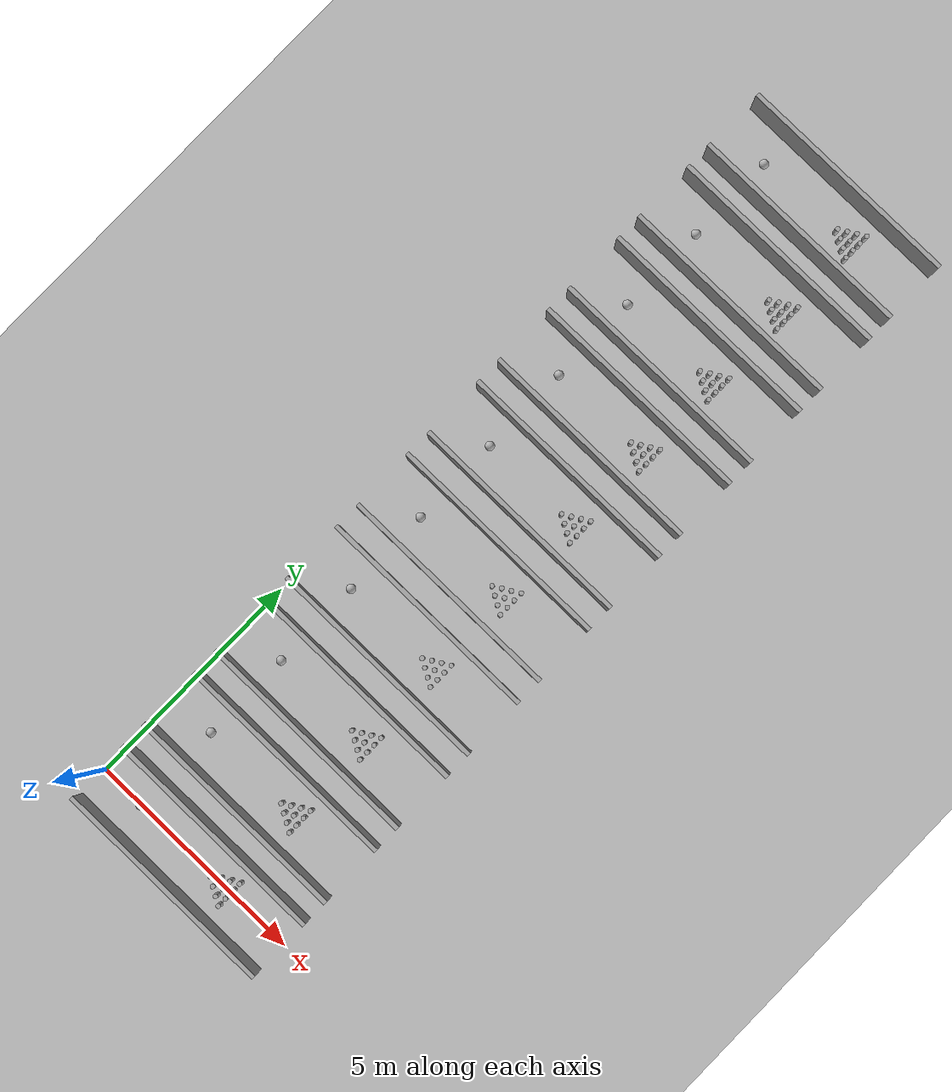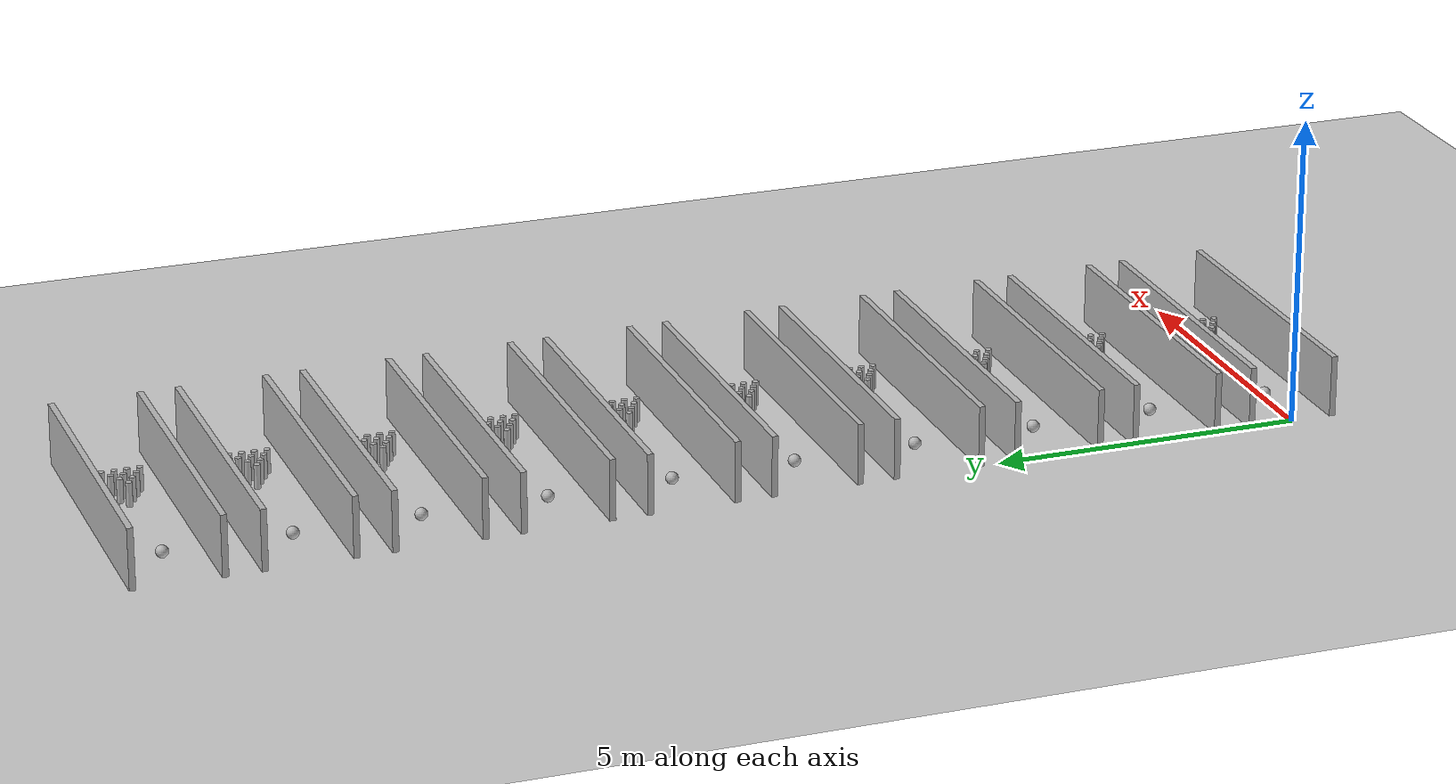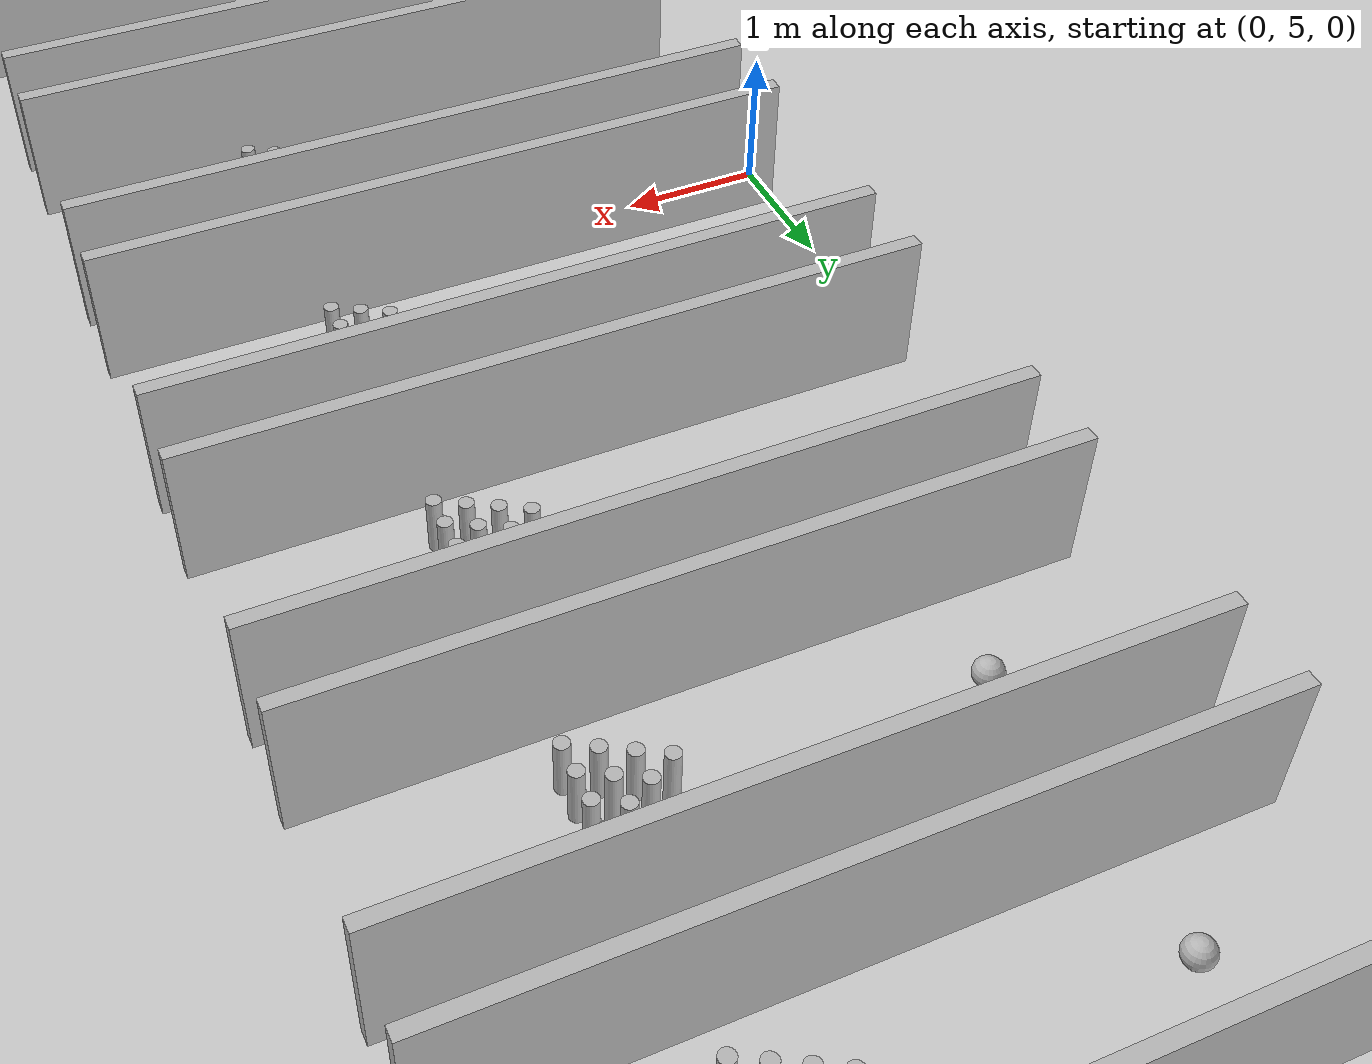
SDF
<sdf version="1.4">
  <world name="default">

    <scene>
      <ambient>0.4 0.4 0.4 1</ambient>
      <background>0.7 0.7 0.7 1</background>
      <shadows>true</shadows>
    </scene>

    <!-- A global light source -->
    <include>
      <uri>model://sun</uri>
    </include>

    <!-- A ground plane -->
    <include>
      <uri>model://ground_plane</uri>
    </include>

    <!-- Bowling ball -->
    <include>
      <pose> 1 0 0 0 0 0 </pose>
      <uri>model://bowling_ball</uri>
      <name>lane_0_ball</name>
    </include>

    <!-- Wall -->
    <include>
      <pose> 0 0.7 0 0 0 0 </pose>
      <uri>model://alley_wall</uri>
      <name>lane_0_right_wall</name>
    </include>

    <include>
      <pose> 0 -0.7 0 0 0 0 </pose>
      <uri>model://alley_wall</uri>
      <name>lane_0_left_wall</name>
    </include>

    <!-- Bowling pins -->
    <!-- First row -->
    <include>
      <pose> 3 0 0 0 0 0 </pose>
      <uri>model://bowling_pin</uri>
      <name>lane_0_pin1</name>
    </include>

    <!-- Second row -->
    <include>
      <pose> 3.1732 -0.1 0 0 0 0 </pose>
      <uri>model://bowling_pin</uri>
      <name>lane_0_pin2</name>
    </include>

    <include>
      <pose> 3.1732 0.1 0 0 0 0 </pose>
      <uri>model://bowling_pin</uri>
      <name>lane_0_pin3</name>
    </include>

    <!-- Third row -->
    <include>
      <pose> 3.346 -0.2 0 0 0 0 </pose>
      <uri>model://bowling_pin</uri>
      <name>lane_0_pin4</name>
    </include>

    <include>
      <pose> 3.346 0 0 0 0 0 </pose>
      <uri>model://bowling_pin</uri>
      <name>lane_0_pin5</name>
    </include>

    <include>
      <pose>3.346 0.2 0 0 0 0 </pose>
      <uri>model://bowling_pin</uri>
      <name>lane_0_pin6</name>
    </include>

    <!-- Fourth row -->
    <include>
      <pose>3.520 -0.3 0 0 0 0 </pose>
      <uri>model://bowling_pin</uri>
      <name>lane_0_pin7</name>
    </include>

    <include>
      <pose>3.520 -0.1 0 0 0 0 </pose>
      <uri>model://bowling_pin</uri>
      <name>lane_0_pin8</name>
    </include>

    <include>
      <pose>3.520 0.1 0 0 0 0 </pose>
      <uri>model://bowling_pin</uri>
      <name>lane_0_pin9</name>
    </include>

    <include>
      <pose>3.520 0.3 0 0 0 0 </pose>
      <uri>model://bowling_pin</uri>
      <name>lane_0_pin10</name>
    </include>
    <!-- Bowling ball -->
    <include>
      <pose> 1 2 0 0 0 0 </pose>
      <uri>model://bowling_ball</uri>
      <name>lane_1_ball</name>
    </include>

    <!-- Wall -->
    <include>
      <pose> 0 2.7 0 0 0 0 </pose>
      <uri>model://alley_wall</uri>
      <name>lane_1_right_wall</name>
    </include>

    <include>
      <pose> 0 1.3 0 0 0 0 </pose>
      <uri>model://alley_wall</uri>
      <name>lane_1_left_wall</name>
    </include>

    <!-- Bowling pins -->
    <!-- First row -->
    <include>
      <pose> 3 2 0 0 0 0 </pose>
      <uri>model://bowling_pin</uri>
      <name>lane_1_pin1</name>
    </include>

    <!-- Second row -->
    <include>
      <pose> 3.1732 1.9 0 0 0 0 </pose>
      <uri>model://bowling_pin</uri>
      <name>lane_1_pin2</name>
    </include>

    <include>
      <pose> 3.1732 2.1 0 0 0 0 </pose>
      <uri>model://bowling_pin</uri>
      <name>lane_1_pin3</name>
    </include>

    <!-- Third row -->
    <include>
      <pose> 3.346 1.8 0 0 0 0 </pose>
      <uri>model://bowling_pin</uri>
      <name>lane_1_pin4</name>
    </include>

    <include>
      <pose> 3.346 2 0 0 0 0 </pose>
      <uri>model://bowling_pin</uri>
      <name>lane_1_pin5</name>
    </include>

    <include>
      <pose>3.346 2.2 0 0 0 0 </pose>
      <uri>model://bowling_pin</uri>
      <name>lane_1_pin6</name>
    </include>

    <!-- Fourth row -->
    <include>
      <pose>3.520 1.7 0 0 0 0 </pose>
      <uri>model://bowling_pin</uri>
      <name>lane_1_pin7</name>
    </include>

    <include>
      <pose>3.520 1.9 0 0 0 0 </pose>
      <uri>model://bowling_pin</uri>
      <name>lane_1_pin8</name>
    </include>

    <include>
      <pose>3.520 2.1 0 0 0 0 </pose>
      <uri>model://bowling_pin</uri>
      <name>lane_1_pin9</name>
    </include>

    <include>
      <pose>3.520 2.3 0 0 0 0 </pose>
      <uri>model://bowling_pin</uri>
      <name>lane_1_pin10</name>
    </include>
    <!-- Bowling ball -->
    <include>
      <pose> 1 4 0 0 0 0 </pose>
      <uri>model://bowling_ball</uri>
      <name>lane_2_ball</name>
    </include>

    <!-- Wall -->
    <include>
      <pose> 0 4.7 0 0 0 0 </pose>
      <uri>model://alley_wall</uri>
      <name>lane_2_right_wall</name>
    </include>

    <include>
      <pose> 0 3.3 0 0 0 0 </pose>
      <uri>model://alley_wall</uri>
      <name>lane_2_left_wall</name>
    </include>

    <!-- Bowling pins -->
    <!-- First row -->
    <include>
      <pose> 3 4 0 0 0 0 </pose>
      <uri>model://bowling_pin</uri>
      <name>lane_2_pin1</name>
    </include>

    <!-- Second row -->
    <include>
      <pose> 3.1732 3.9 0 0 0 0 </pose>
      <uri>model://bowling_pin</uri>
      <name>lane_2_pin2</name>
    </include>

    <include>
      <pose> 3.1732 4.1 0 0 0 0 </pose>
      <uri>model://bowling_pin</uri>
      <name>lane_2_pin3</name>
    </include>

    <!-- Third row -->
    <include>
      <pose> 3.346 3.8 0 0 0 0 </pose>
      <uri>model://bowling_pin</uri>
      <name>lane_2_pin4</name>
    </include>

    <include>
      <pose> 3.346 4 0 0 0 0 </pose>
      <uri>model://bowling_pin</uri>
      <name>lane_2_pin5</name>
    </include>

    <include>
      <pose>3.346 4.2 0 0 0 0 </pose>
      <uri>model://bowling_pin</uri>
      <name>lane_2_pin6</name>
    </include>

    <!-- Fourth row -->
    <include>
      <pose>3.520 3.7 0 0 0 0 </pose>
      <uri>model://bowling_pin</uri>
      <name>lane_2_pin7</name>
    </include>

    <include>
      <pose>3.520 3.9 0 0 0 0 </pose>
      <uri>model://bowling_pin</uri>
      <name>lane_2_pin8</name>
    </include>

    <include>
      <pose>3.520 4.1 0 0 0 0 </pose>
      <uri>model://bowling_pin</uri>
      <name>lane_2_pin9</name>
    </include>

    <include>
      <pose>3.520 4.3 0 0 0 0 </pose>
      <uri>model://bowling_pin</uri>
      <name>lane_2_pin10</name>
    </include>
    <!-- Bowling ball -->
    <include>
      <pose> 1 6 0 0 0 0 </pose>
      <uri>model://bowling_ball</uri>
      <name>lane_3_ball</name>
    </include>

    <!-- Wall -->
    <include>
      <pose> 0 6.7 0 0 0 0 </pose>
      <uri>model://alley_wall</uri>
      <name>lane_3_right_wall</name>
    </include>

    <include>
      <pose> 0 5.3 0 0 0 0 </pose>
      <uri>model://alley_wall</uri>
      <name>lane_3_left_wall</name>
    </include>

    <!-- Bowling pins -->
    <!-- First row -->
    <include>
      <pose> 3 6 0 0 0 0 </pose>
      <uri>model://bowling_pin</uri>
      <name>lane_3_pin1</name>
    </include>

    <!-- Second row -->
    <include>
      <pose> 3.1732 5.9 0 0 0 0 </pose>
      <uri>model://bowling_pin</uri>
      <name>lane_3_pin2</name>
    </include>

    <include>
      <pose> 3.1732 6.1 0 0 0 0 </pose>
      <uri>model://bowling_pin</uri>
      <name>lane_3_pin3</name>
    </include>

    <!-- Third row -->
    <include>
      <pose> 3.346 5.8 0 0 0 0 </pose>
      <uri>model://bowling_pin</uri>
      <name>lane_3_pin4</name>
    </include>

    <include>
      <pose> 3.346 6 0 0 0 0 </pose>
      <uri>model://bowling_pin</uri>
      <name>lane_3_pin5</name>
    </include>

    <include>
      <pose>3.346 6.2 0 0 0 0 </pose>
      <uri>model://bowling_pin</uri>
      <name>lane_3_pin6</name>
    </include>

    <!-- Fourth row -->
    <include>
      <pose>3.520 5.7 0 0 0 0 </pose>
      <uri>model://bowling_pin</uri>
      <name>lane_3_pin7</name>
    </include>

    <include>
      <pose>3.520 5.9 0 0 0 0 </pose>
      <uri>model://bowling_pin</uri>
      <name>lane_3_pin8</name>
    </include>

    <include>
      <pose>3.520 6.1 0 0 0 0 </pose>
      <uri>model://bowling_pin</uri>
      <name>lane_3_pin9</name>
    </include>

    <include>
      <pose>3.520 6.3 0 0 0 0 </pose>
      <uri>model://bowling_pin</uri>
      <name>lane_3_pin10</name>
    </include>
    <!-- Bowling ball -->
    <include>
      <pose> 1 8 0 0 0 0 </pose>
      <uri>model://bowling_ball</uri>
      <name>lane_4_ball</name>
    </include>

    <!-- Wall -->
    <include>
      <pose> 0 8.7 0 0 0 0 </pose>
      <uri>model://alley_wall</uri>
      <name>lane_4_right_wall</name>
    </include>

    <include>
      <pose> 0 7.3 0 0 0 0 </pose>
      <uri>model://alley_wall</uri>
      <name>lane_4_left_wall</name>
    </include>

    <!-- Bowling pins -->
    <!-- First row -->
    <include>
      <pose> 3 8 0 0 0 0 </pose>
      <uri>model://bowling_pin</uri>
      <name>lane_4_pin1</name>
    </include>

    <!-- Second row -->
    <include>
      <pose> 3.1732 7.9 0 0 0 0 </pose>
      <uri>model://bowling_pin</uri>
      <name>lane_4_pin2</name>
    </include>

    <include>
      <pose> 3.1732 8.1 0 0 0 0 </pose>
      <uri>model://bowling_pin</uri>
      <name>lane_4_pin3</name>
    </include>

    <!-- Third row -->
    <include>
      <pose> 3.346 7.8 0 0 0 0 </pose>
      <uri>model://bowling_pin</uri>
      <name>lane_4_pin4</name>
    </include>

    <include>
      <pose> 3.346 8 0 0 0 0 </pose>
      <uri>model://bowling_pin</uri>
      <name>lane_4_pin5</name>
    </include>

    <include>
      <pose>3.346 8.2 0 0 0 0 </pose>
      <uri>model://bowling_pin</uri>
      <name>lane_4_pin6</name>
    </include>

    <!-- Fourth row -->
    <include>
      <pose>3.520 7.7 0 0 0 0 </pose>
      <uri>model://bowling_pin</uri>
      <name>lane_4_pin7</name>
    </include>

    <include>
      <pose>3.520 7.9 0 0 0 0 </pose>
      <uri>model://bowling_pin</uri>
      <name>lane_4_pin8</name>
    </include>

    <include>
      <pose>3.520 8.1 0 0 0 0 </pose>
      <uri>model://bowling_pin</uri>
      <name>lane_4_pin9</name>
    </include>

    <include>
      <pose>3.520 8.3 0 0 0 0 </pose>
      <uri>model://bowling_pin</uri>
      <name>lane_4_pin10</name>
    </include>
    <!-- Bowling ball -->
    <include>
      <pose> 1 10 0 0 0 0 </pose>
      <uri>model://bowling_ball</uri>
      <name>lane_5_ball</name>
    </include>

    <!-- Wall -->
    <include>
      <pose> 0 10.7 0 0 0 0 </pose>
      <uri>model://alley_wall</uri>
      <name>lane_5_right_wall</name>
    </include>

    <include>
      <pose> 0 9.3 0 0 0 0 </pose>
      <uri>model://alley_wall</uri>
      <name>lane_5_left_wall</name>
    </include>

    <!-- Bowling pins -->
    <!-- First row -->
    <include>
      <pose> 3 10 0 0 0 0 </pose>
      <uri>model://bowling_pin</uri>
      <name>lane_5_pin1</name>
    </include>

    <!-- Second row -->
    <include>
      <pose> 3.1732 9.9 0 0 0 0 </pose>
      <uri>model://bowling_pin</uri>
      <name>lane_5_pin2</name>
    </include>

    <include>
      <pose> 3.1732 10.1 0 0 0 0 </pose>
      <uri>model://bowling_pin</uri>
      <name>lane_5_pin3</name>
    </include>

    <!-- Third row -->
    <include>
      <pose> 3.346 9.8 0 0 0 0 </pose>
      <uri>model://bowling_pin</uri>
      <name>lane_5_pin4</name>
    </include>

    <include>
      <pose> 3.346 10 0 0 0 0 </pose>
      <uri>model://bowling_pin</uri>
      <name>lane_5_pin5</name>
    </include>

    <include>
      <pose>3.346 10.2 0 0 0 0 </pose>
      <uri>model://bowling_pin</uri>
      <name>lane_5_pin6</name>
    </include>

    <!-- Fourth row -->
    <include>
      <pose>3.520 9.7 0 0 0 0 </pose>
      <uri>model://bowling_pin</uri>
      <name>lane_5_pin7</name>
    </include>

    <include>
      <pose>3.520 9.9 0 0 0 0 </pose>
      <uri>model://bowling_pin</uri>
      <name>lane_5_pin8</name>
    </include>

    <include>
      <pose>3.520 10.1 0 0 0 0 </pose>
      <uri>model://bowling_pin</uri>
      <name>lane_5_pin9</name>
    </include>

    <include>
      <pose>3.520 10.3 0 0 0 0 </pose>
      <uri>model://bowling_pin</uri>
      <name>lane_5_pin10</name>
    </include>
    <!-- Bowling ball -->
    <include>
      <pose> 1 12 0 0 0 0 </pose>
      <uri>model://bowling_ball</uri>
      <name>lane_6_ball</name>
    </include>

    <!-- Wall -->
    <include>
      <pose> 0 12.7 0 0 0 0 </pose>
      <uri>model://alley_wall</uri>
      <name>lane_6_right_wall</name>
    </include>

    <include>
      <pose> 0 11.3 0 0 0 0 </pose>
      <uri>model://alley_wall</uri>
      <name>lane_6_left_wall</name>
    </include>

    <!-- Bowling pins -->
    <!-- First row -->
    <include>
      <pose> 3 12 0 0 0 0 </pose>
      <uri>model://bowling_pin</uri>
      <name>lane_6_pin1</name>
    </include>

    <!-- Second row -->
    <include>
      <pose> 3.1732 11.9 0 0 0 0 </pose>
      <uri>model://bowling_pin</uri>
      <name>lane_6_pin2</name>
    </include>

    <include>
      <pose> 3.1732 12.1 0 0 0 0 </pose>
      <uri>model://bowling_pin</uri>
      <name>lane_6_pin3</name>
    </include>

    <!-- Third row -->
    <include>
      <pose> 3.346 11.8 0 0 0 0 </pose>
      <uri>model://bowling_pin</uri>
      <name>lane_6_pin4</name>
    </include>

    <include>
      <pose> 3.346 12 0 0 0 0 </pose>
      <uri>model://bowling_pin</uri>
      <name>lane_6_pin5</name>
    </include>

    <include>
      <pose>3.346 12.2 0 0 0 0 </pose>
      <uri>model://bowling_pin</uri>
      <name>lane_6_pin6</name>
    </include>

    <!-- Fourth row -->
    <include>
      <pose>3.520 11.7 0 0 0 0 </pose>
      <uri>model://bowling_pin</uri>
      <name>lane_6_pin7</name>
    </include>

    <include>
      <pose>3.520 11.9 0 0 0 0 </pose>
      <uri>model://bowling_pin</uri>
      <name>lane_6_pin8</name>
    </include>

    <include>
      <pose>3.520 12.1 0 0 0 0 </pose>
      <uri>model://bowling_pin</uri>
      <name>lane_6_pin9</name>
    </include>

    <include>
      <pose>3.520 12.3 0 0 0 0 </pose>
      <uri>model://bowling_pin</uri>
      <name>lane_6_pin10</name>
    </include>
    <!-- Bowling ball -->
    <include>
      <pose> 1 14 0 0 0 0 </pose>
      <uri>model://bowling_ball</uri>
      <name>lane_7_ball</name>
    </include>

    <!-- Wall -->
    <include>
      <pose> 0 14.7 0 0 0 0 </pose>
      <uri>model://alley_wall</uri>
      <name>lane_7_right_wall</name>
    </include>

    <include>
      <pose> 0 13.3 0 0 0 0 </pose>
      <uri>model://alley_wall</uri>
      <name>lane_7_left_wall</name>
    </include>

    <!-- Bowling pins -->
    <!-- First row -->
    <include>
      <pose> 3 14 0 0 0 0 </pose>
      <uri>model://bowling_pin</uri>
      <name>lane_7_pin1</name>
    </include>

    <!-- Second row -->
    <include>
      <pose> 3.1732 13.9 0 0 0 0 </pose>
      <uri>model://bowling_pin</uri>
      <name>lane_7_pin2</name>
    </include>

    <include>
      <pose> 3.1732 14.1 0 0 0 0 </pose>
      <uri>model://bowling_pin</uri>
      <name>lane_7_pin3</name>
    </include>

    <!-- Third row -->
    <include>
      <pose> 3.346 13.8 0 0 0 0 </pose>
      <uri>model://bowling_pin</uri>
      <name>lane_7_pin4</name>
    </include>

    <include>
      <pose> 3.346 14 0 0 0 0 </pose>
      <uri>model://bowling_pin</uri>
      <name>lane_7_pin5</name>
    </include>

    <include>
      <pose>3.346 14.2 0 0 0 0 </pose>
      <uri>model://bowling_pin</uri>
      <name>lane_7_pin6</name>
    </include>

    <!-- Fourth row -->
    <include>
      <pose>3.520 13.7 0 0 0 0 </pose>
      <uri>model://bowling_pin</uri>
      <name>lane_7_pin7</name>
    </include>

    <include>
      <pose>3.520 13.9 0 0 0 0 </pose>
      <uri>model://bowling_pin</uri>
      <name>lane_7_pin8</name>
    </include>

    <include>
      <pose>3.520 14.1 0 0 0 0 </pose>
      <uri>model://bowling_pin</uri>
      <name>lane_7_pin9</name>
    </include>

    <include>
      <pose>3.520 14.3 0 0 0 0 </pose>
      <uri>model://bowling_pin</uri>
      <name>lane_7_pin10</name>
    </include>
    <!-- Bowling ball -->
    <include>
      <pose> 1 16 0 0 0 0 </pose>
      <uri>model://bowling_ball</uri>
      <name>lane_8_ball</name>
    </include>

    <!-- Wall -->
    <include>
      <pose> 0 16.7 0 0 0 0 </pose>
      <uri>model://alley_wall</uri>
      <name>lane_8_right_wall</name>
    </include>

    <include>
      <pose> 0 15.3 0 0 0 0 </pose>
      <uri>model://alley_wall</uri>
      <name>lane_8_left_wall</name>
    </include>

    <!-- Bowling pins -->
    <!-- First row -->
    <include>
      <pose> 3 16 0 0 0 0 </pose>
      <uri>model://bowling_pin</uri>
      <name>lane_8_pin1</name>
    </include>

    <!-- Second row -->
    <include>
      <pose> 3.1732 15.9 0 0 0 0 </pose>
      <uri>model://bowling_pin</uri>
      <name>lane_8_pin2</name>
    </include>

    <include>
      <pose> 3.1732 16.1 0 0 0 0 </pose>
      <uri>model://bowling_pin</uri>
      <name>lane_8_pin3</name>
    </include>

    <!-- Third row -->
    <include>
      <pose> 3.346 15.8 0 0 0 0 </pose>
      <uri>model://bowling_pin</uri>
      <name>lane_8_pin4</name>
    </include>

    <include>
      <pose> 3.346 16 0 0 0 0 </pose>
      <uri>model://bowling_pin</uri>
      <name>lane_8_pin5</name>
    </include>

    <include>
      <pose>3.346 16.2 0 0 0 0 </pose>
      <uri>model://bowling_pin</uri>
      <name>lane_8_pin6</name>
    </include>

    <!-- Fourth row -->
    <include>
      <pose>3.520 15.7 0 0 0 0 </pose>
      <uri>model://bowling_pin</uri>
      <name>lane_8_pin7</name>
    </include>

    <include>
      <pose>3.520 15.9 0 0 0 0 </pose>
      <uri>model://bowling_pin</uri>
      <name>lane_8_pin8</name>
    </include>

    <include>
      <pose>3.520 16.1 0 0 0 0 </pose>
      <uri>model://bowling_pin</uri>
      <name>lane_8_pin9</name>
    </include>

    <include>
      <pose>3.520 16.3 0 0 0 0 </pose>
      <uri>model://bowling_pin</uri>
      <name>lane_8_pin10</name>
    </include>
    <!-- Bowling ball -->
    <include>
      <pose> 1 18 0 0 0 0 </pose>
      <uri>model://bowling_ball</uri>
      <name>lane_9_ball</name>
    </include>

    <!-- Wall -->
    <include>
      <pose> 0 18.7 0 0 0 0 </pose>
      <uri>model://alley_wall</uri>
      <name>lane_9_right_wall</name>
    </include>

    <include>
      <pose> 0 17.3 0 0 0 0 </pose>
      <uri>model://alley_wall</uri>
      <name>lane_9_left_wall</name>
    </include>

    <!-- Bowling pins -->
    <!-- First row -->
    <include>
      <pose> 3 18 0 0 0 0 </pose>
      <uri>model://bowling_pin</uri>
      <name>lane_9_pin1</name>
    </include>

    <!-- Second row -->
    <include>
      <pose> 3.1732 17.9 0 0 0 0 </pose>
      <uri>model://bowling_pin</uri>
      <name>lane_9_pin2</name>
    </include>

    <include>
      <pose> 3.1732 18.1 0 0 0 0 </pose>
      <uri>model://bowling_pin</uri>
      <name>lane_9_pin3</name>
    </include>

    <!-- Third row -->
    <include>
      <pose> 3.346 17.8 0 0 0 0 </pose>
      <uri>model://bowling_pin</uri>
      <name>lane_9_pin4</name>
    </include>

    <include>
      <pose> 3.346 18 0 0 0 0 </pose>
      <uri>model://bowling_pin</uri>
      <name>lane_9_pin5</name>
    </include>

    <include>
      <pose>3.346 18.2 0 0 0 0 </pose>
      <uri>model://bowling_pin</uri>
      <name>lane_9_pin6</name>
    </include>

    <!-- Fourth row -->
    <include>
      <pose>3.520 17.7 0 0 0 0 </pose>
      <uri>model://bowling_pin</uri>
      <name>lane_9_pin7</name>
    </include>

    <include>
      <pose>3.520 17.9 0 0 0 0 </pose>
      <uri>model://bowling_pin</uri>
      <name>lane_9_pin8</name>
    </include>

    <include>
      <pose>3.520 18.1 0 0 0 0 </pose>
      <uri>model://bowling_pin</uri>
      <name>lane_9_pin9</name>
    </include>

    <include>
      <pose>3.520 18.3 0 0 0 0 </pose>
      <uri>model://bowling_pin</uri>
      <name>lane_9_pin10</name>
    </include>
    <physics type="ode">
      <real_time_update_rate>1000.0</real_time_update_rate>
      <max_step_size>0.001</max_step_size>
      <real_time_factor>1</real_time_factor>
      <ode>
        <solver>
          <type>quick</type>
          <iters>150</iters>
          <precon_iters>0</precon_iters>
          <sor>1.400000</sor>
          <use_dynamic_moi_rescaling>1</use_dynamic_moi_rescaling>
        </solver>
        <constraints>
          <cfm>0.00001</cfm>
          <erp>0.2</erp>
          <contact_max_correcting_vel>2000.000000</contact_max_correcting_vel>
          <contact_surface_layer>0.01000</contact_surface_layer>
        </constraints>
      </ode>
    </physics>
  </world>

</sdf>

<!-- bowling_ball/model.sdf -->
<sdf version='1.4'>
  <model name="bowling_ball">
    <static>false</static>
    <link name="ball">
      <!-- this controls the balls position -->
      <pose>0 0 .1 0 0 0</pose>

      <!-- this is the sphere that collision runs against -->
      <collision name='collision'>
        <geometry>
          <sphere>
            <radius>.1</radius>
          </sphere>
        </geometry>
      </collision>

      <!-- this is the sphere that is rendered -->
      <visual name='visual'>
        <geometry>
          <sphere>
            <radius>.1</radius>
          </sphere>
        </geometry>
      </visual>

      <!-- this controls physics properties (mass, moment of inertia) -->
      <inertial>
        <mass>0.2</mass>
        <inertia>
          <ixx>0.00004</ixx>
          <ixy>0</ixy>
          <ixz>0</ixz>
          <iyy>0.00004</iyy>
          <iyz>0</iyz>
          <izz>0.00004</izz>
        </inertia>
      </inertial>
    </link>
  </model>
</sdf>

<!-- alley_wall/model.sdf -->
<sdf version='1.4'>
  <model name="alley_wall">
    <static>true</static>
    <link name="wall">
      <pose>2.5 0 .5 0 0 0</pose>
      <collision name='collision'>
        <geometry>
          <box>
           <size>5 0.1 1</size>
          </box>
        </geometry>
      </collision>
      <visual name='visual'>
        <geometry>
          <box>
           <size>5 0.1 1</size>
          </box>
        </geometry>
      </visual>
    </link>
  </model>
</sdf>

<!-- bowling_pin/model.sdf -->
<sdf version='1.4'>
  <model name="bowling_pin">
    <static>false</static>
    <link name="pin">
      <!-- this controls the pins position -->
      <pose>0 0 .2 0 0 0</pose>

      <!-- this is the sphere that collision runs against -->
      <collision name='collision'>
        <geometry>
          <cylinder>
            <radius>0.05</radius>
            <length>0.4</length>
          </cylinder>
        </geometry>
      </collision>

      <!-- this is the sphere that is rendered -->
      <visual name='visual'>
        <geometry>
          <cylinder>
            <radius>0.05</radius>
            <length>0.4</length>
          </cylinder>
        </geometry>
      </visual>

      <!-- this controls physics properties (mass, moment of inertia) -->
      <inertial>
        <!-- position center of mass slightly higher to make it easier to tip over -->
        <pose>0 0 0.04 0 0 0</pose>
        <mass>0.01</mass>
        <inertia>
          <!-- these two moments of inertia are lower so the pins
                will tip more easily -->
          <ixx>0.00003</ixx>
          <ixy>0</ixy>
          <ixz>0</ixz>
          <iyy>0.00003</iyy>
          <iyz>0</iyz>
          <izz>0.001</izz>
        </inertia>
      </inertial>
    </link>
  </model>
</sdf>
